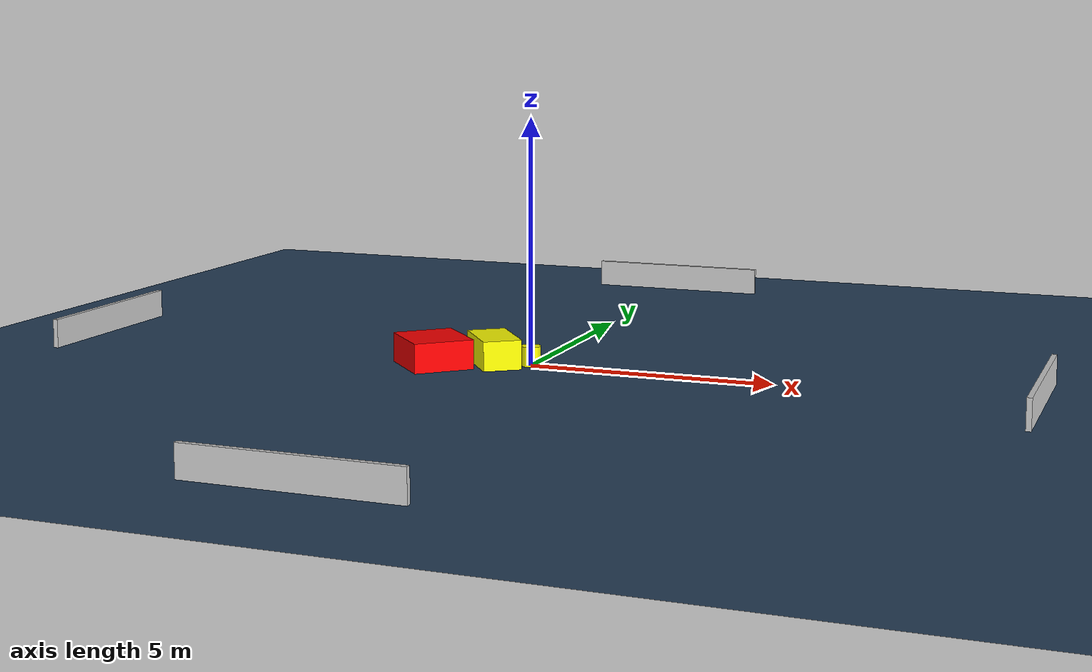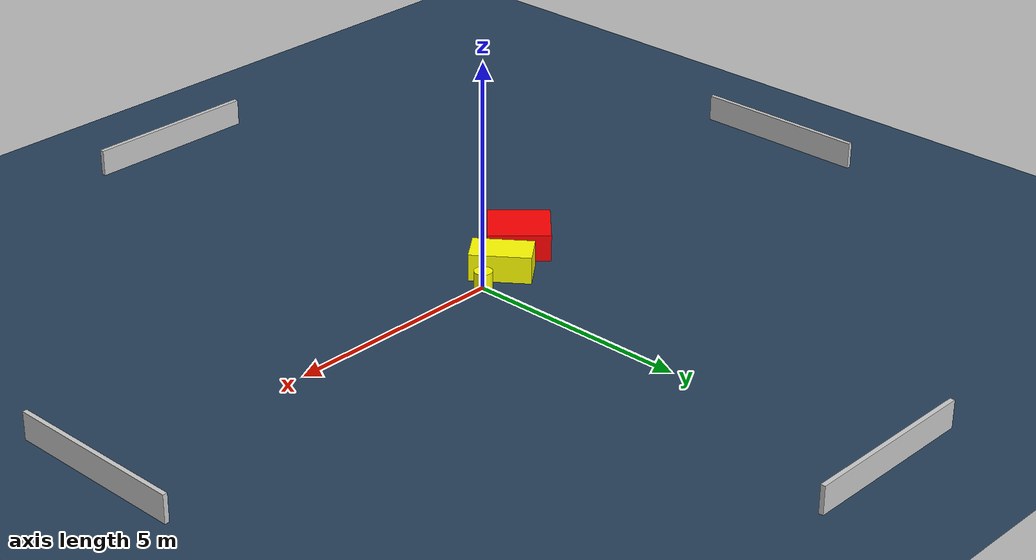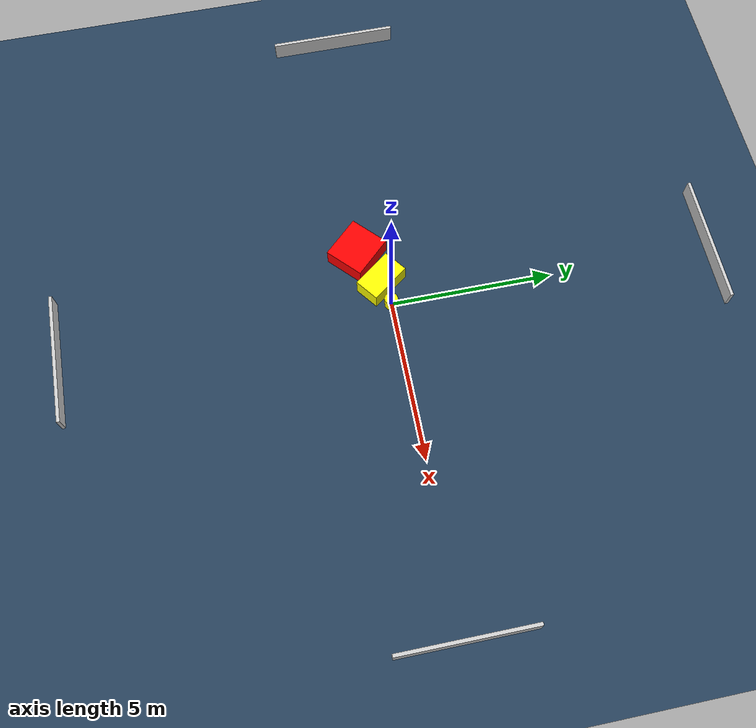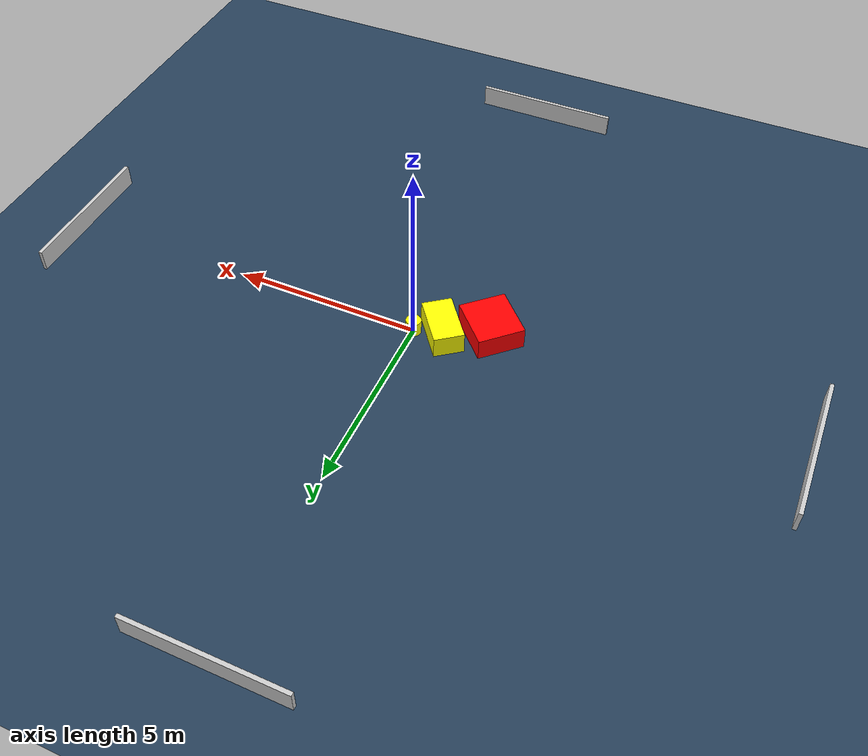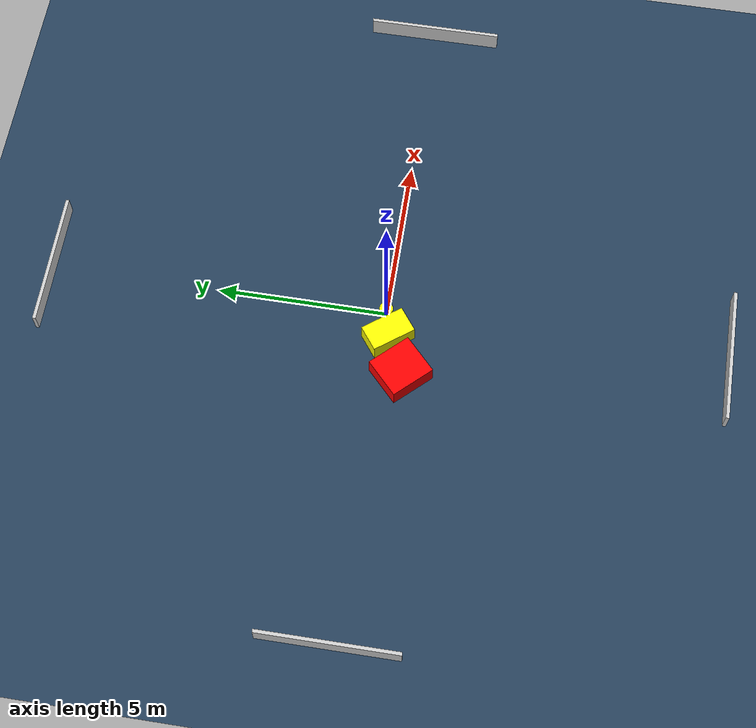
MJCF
<?xml version="1.0" ?>
<mujoco model="generated_environment">
  <option timestep="0.01" integrator="RK4" cone="elliptic"/>
  <default>
    <geom density="1"/>
  </default>
  <asset>
    <texture builtin="gradient" height="3072" name="skybox" rgb1="0.3 0.5 0.7" rgb2="0 0 0" type="skybox" width="512"/>
    <texture builtin="checker" height="300" name="groundplane" rgb1="0.2 0.3 0.4" rgb2="0.1 0.2 0.3" type="2d" width="300"/>
    <material name="groundplane" reflectance="0.2" texrepeat="5 5" texture="groundplane"/>
  </asset>
  <worldbody>
    <light dir="0 0 -1" directional="true" pos="0 0 1.5"/>
    <geom condim="3" friction="0.5 0.005 0.001" material="groundplane" name="floor" pos="0 0 0" size="0 0 0.05" type="plane"/>
    <body name="walls">
      <geom name="wall_1" condim="4" pos="-10.0 0.0 0.3" rgba="0.800000011920929 0.800000011920929 0.800000011920929 1.0" size="0.05 2.0 0.3" type="box"/>
      <geom name="wall_2" condim="4" pos="10.0 0.0 0.3" rgba="0.800000011920929 0.800000011920929 0.800000011920929 1.0" size="0.05 2.0 0.3" type="box"/>
      <geom name="wall_3" condim="4" pos="0.0 -10.0 0.3" rgba="0.800000011920929 0.800000011920929 0.800000011920929 1.0" size="2.0 0.05 0.3" type="box"/>
      <geom name="wall_4" condim="4" pos="0.0 10.0 0.3" rgba="0.800000011920929 0.800000011920929 0.800000011920929 1.0" size="2.0 0.05 0.3" type="box"/>
    </body>
    <body name="robot">
      <joint name="joint_x" type="slide" pos="0 0 0" axis="1 0 0"/>
      <joint name="joint_y" type="slide" pos="0 0 0" axis="0 1 0"/>
      <geom name="robot" type="cylinder" pos="0.0 0.0 0.2" size="0.2 0.2 0.0" mass="5.0" friction="1.0 0.005 0.0001" condim="4" rgba="1.0 1.0 0.0 1.0"/>
    </body>
    <body name="obstacle_1_movable">
      <geom name="obstacle_1_movable" condim="4" pos="-0.7293097295990707 -0.16406262156975626 0.3" euler="0 0 307.1394551505589" friction="0.0 0.005 0.001" rgba="1.0 1.0 0.0 1.0" size="0.6616184722855869 0.3956345450995977 0.3" type="box" mass="0.1"/>
      <joint type="free"/>
    </body>
    <body name="obstacle_2_static">
      <geom name="obstacle_2_static" condim="4" pos="-1.8362830180582113 -0.7089866530224709 0.3" euler="0 0 223.554718484432" friction="0.0 0.005 0.001" rgba="1.0 0.0 0.0 1.0" size="0.6211559952307262 0.6771350778781612 0.3" type="box"/>
    </body>
  </worldbody>
  <actuator>
    <motor name="actuator_x" joint="joint_x" gear="1" ctrlrange="-1 1"/>
    <motor name="actuator_y" joint="joint_y" gear="1" ctrlrange="-1 1"/>
  </actuator>
</mujoco>
